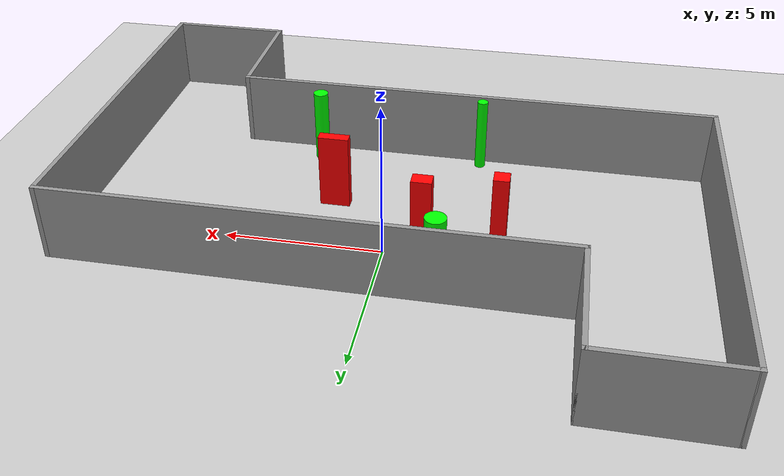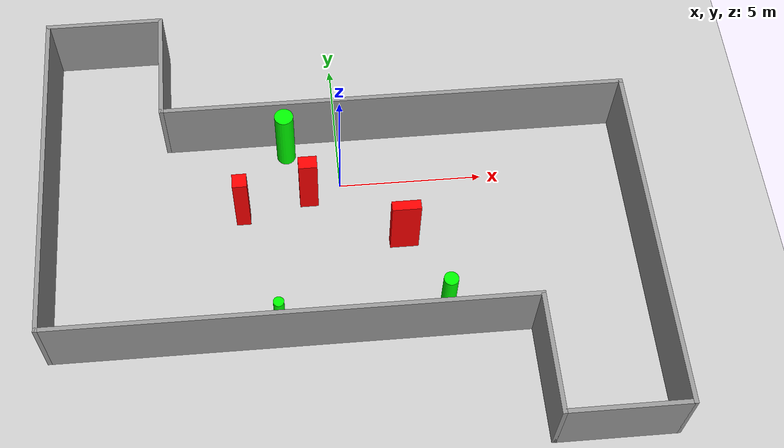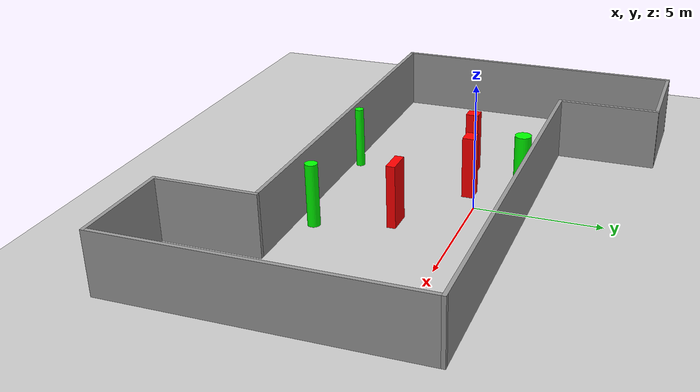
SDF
<sdf version="1.7">
 <world name="default">
  <light name="sun" type="directional">
   <pose>0 0 10 0 -0 0</pose>
   <diffuse>0.8 0.8 0.8 1</diffuse>
   <specular>0.2 0.2 0.2 1</specular>
   <attenuation>
    <range>1000</range>
    <constant>0.9</constant>
    <linear>0.01</linear>
    <quadratic>0.001</quadratic>
   </attenuation>
   <direction>-0.5 0.1 -0.9</direction>
   <spot><inner_angle>0</inner_angle><outer_angle>0</outer_angle><falloff>0</falloff></spot>
  </light>
  <model name="ground_plane">
   <static>1</static>
   <link name="link">
    <collision name="collision">
     <geometry><plane><normal>0 0 1</normal><size>100 100</size></plane></geometry>
     <surface>
      <contact><collide_bitmask>65535</collide_bitmask></contact>
      <friction><ode><mu>100</mu><mu2>50</mu2></ode></friction>
     </surface>
    </collision>
    <visual name="visual">
     <cast_shadows>0</cast_shadows>
     <geometry><plane><normal>0 0 1</normal><size>100 100</size></plane></geometry>
     <material>
      <script><uri>file://media/materials/scripts/gazebo.material</uri><name>Gazebo/Grey</name></script>
     </material>
    </visual>
   </link>
  </model>
  <gravity>0 0 -9.8</gravity>
  <magnetic_field>6e-06 2.3e-05 -4.2e-05</magnetic_field>
  <atmosphere type="adiabatic"/>
  <physics type="ode">
   <max_step_size>0.001</max_step_size>
   <real_time_factor>1</real_time_factor>
   <real_time_update_rate>1000</real_time_update_rate>
  </physics>
  <scene><ambient>0.4 0.4 0.4 1</ambient><background>0.7 0.7 0.7 1</background><shadows>1</shadows></scene>
  <spherical_coordinates>
   <surface_model>EARTH_WGS84</surface_model>
   <latitude_deg>0</latitude_deg>
   <longitude_deg>0</longitude_deg>
   <elevation>0</elevation>
   <heading_deg>0</heading_deg>
  </spherical_coordinates>
  <model name="my_base_walls">
   <link name="Wall_13">
    <collision name="Wall_13_Collision">
     <geometry><box><size>12.15 0.15 2.5</size></box></geometry>
     <pose>0 0 1.25 0 -0 0</pose>
    </collision>
    <visual name="Wall_13_Visual">
     <pose>0 0 1.25 0 -0 0</pose>
     <geometry><box><size>12.15 0.15 2.5</size></box></geometry>
     <material>
      <script><uri>file://media/materials/scripts/gazebo.material</uri><name>Gazebo/Grey</name></script>
      <ambient>1 1 1 1</ambient>
     </material>
     <meta><layer>0</layer></meta>
    </visual>
    <pose>10 -2 0 0 -0 1.5708</pose>
   </link>
   <link name="Wall_15">
    <collision name="Wall_15_Collision">
     <geometry><box><size>16.15 0.15 2.5</size></box></geometry>
     <pose>0 0 1.25 0 -0 0</pose>
    </collision>
    <visual name="Wall_15_Visual">
     <pose>0 0 1.25 0 -0 0</pose>
     <geometry><box><size>16.15 0.15 2.5</size></box></geometry>
     <material>
      <script><uri>file://media/materials/scripts/gazebo.material</uri><name>Gazebo/Grey</name></script>
      <ambient>1 1 1 1</ambient>
     </material>
     <meta><layer>0</layer></meta>
    </visual>
    <pose>2 4 0 0 -0 3.14159</pose>
   </link>
   <link name="Wall_17">
    <collision name="Wall_17_Collision">
     <geometry><box><size>4.15 0.15 2.5</size></box></geometry>
     <pose>0 0 1.25 0 -0 0</pose>
    </collision>
    <visual name="Wall_17_Visual">
     <pose>0 0 1.25 0 -0 0</pose>
     <geometry><box><size>4.15 0.15 2.5</size></box></geometry>
     <material>
      <script><uri>file://media/materials/scripts/gazebo.material</uri><name>Gazebo/Grey</name></script>
      <ambient>1 1 1 1</ambient>
     </material>
     <meta><layer>0</layer></meta>
    </visual>
    <pose>6 -6 0 0 -0 -1.5708</pose>
   </link>
   <link name="Wall_19">
    <collision name="Wall_19_Collision">
     <geometry><box><size>12.15 0.15 2.5</size></box></geometry>
     <pose>0 0 1.25 0 -0 0</pose>
    </collision>
    <visual name="Wall_19_Visual">
     <pose>0 0 1.25 0 -0 0</pose>
     <geometry><box><size>12.15 0.15 2.5</size></box></geometry>
     <material>
      <script><uri>file://media/materials/scripts/gazebo.material</uri><name>Gazebo/Grey</name></script>
      <ambient>1 1 1 1</ambient>
     </material>
     <meta><layer>0</layer></meta>
    </visual>
    <pose>-10 2 0 0 -0 1.5708</pose>
   </link>
   <link name="Wall_21">
    <collision name="Wall_21_Collision">
     <geometry><box><size>4.15 0.15 2.5</size></box></geometry>
     <pose>0 0 1.25 0 -0 0</pose>
    </collision>
    <visual name="Wall_21_Visual">
     <pose>0 0 1.25 0 -0 0</pose>
     <geometry><box><size>4.15 0.15 2.5</size></box></geometry>
     <material>
      <script><uri>file://media/materials/scripts/gazebo.material</uri><name>Gazebo/Grey</name></script>
      <ambient>1 1 1 1</ambient>
     </material>
     <meta><layer>0</layer></meta>
    </visual>
    <pose>-8 8 0 0 -0 0</pose>
   </link>
   <link name="Wall_23">
    <collision name="Wall_23_Collision">
     <geometry><box><size>4.15 0.15 2.5</size></box></geometry>
     <pose>0 0 1.25 0 -0 0</pose>
    </collision>
    <visual name="Wall_23_Visual">
     <pose>0 0 1.25 0 -0 0</pose>
     <geometry><box><size>4.15 0.15 2.5</size></box></geometry>
     <material>
      <script><uri>file://media/materials/scripts/gazebo.material</uri><name>Gazebo/Grey</name></script>
      <ambient>1 1 1 1</ambient>
     </material>
     <meta><layer>0</layer></meta>
    </visual>
    <pose>-6 6 0 0 -0 -1.5708</pose>
   </link>
   <link name="Wall_25">
    <collision name="Wall_25_Collision">
     <geometry><box><size>4.15 0.15 2.5</size></box></geometry>
     <pose>0 0 1.25 0 -0 0</pose>
    </collision>
    <visual name="Wall_25_Visual">
     <pose>0 0 1.25 0 -0 0</pose>
     <geometry><box><size>4.15 0.15 2.5</size></box></geometry>
     <material>
      <script><uri>file://media/materials/scripts/gazebo.material</uri><name>Gazebo/Grey</name></script>
      <ambient>1 1 1 1</ambient>
     </material>
     <meta><layer>0</layer></meta>
    </visual>
    <pose>8 -8 0 0 -0 0</pose>
   </link>
   <link name="Wall_9">
    <collision name="Wall_9_Collision">
     <geometry><box><size>16.15 0.15 2.5</size></box></geometry>
     <pose>0 0 1.25 0 -0 0</pose>
    </collision>
    <visual name="Wall_9_Visual">
     <pose>0 0 1.25 0 -0 0</pose>
     <geometry><box><size>16.15 0.15 2.5</size></box></geometry>
     <material>
      <script><uri>file://media/materials/scripts/gazebo.material</uri><name>Gazebo/Grey</name></script>
      <ambient>1 1 1 1</ambient>
     </material>
     <meta><layer>0</layer></meta>
    </visual>
    <pose>-2 -4 0 0 -0 3.14159</pose>
   </link>
   <static>1</static>
   <pose>-0 -2 0 0 -0 0</pose>
  </model>
  <model name="cylinder1">
   <static>1</static>
   <link name="link">
    <inertial>
     <mass>1</mass>
     <inertia><ixx>0.5</ixx><ixy>0</ixy><ixz>0</ixz><iyy>0.5</iyy><iyz>0</iyz><izz>1</izz></inertia>
    </inertial>
    <collision name="collision">
     <geometry><cylinder><radius>0.32569418682180445</radius><length>2.5</length></cylinder></geometry>
    </collision>
    <visual name="visual">
     <geometry><cylinder><radius>0.32569418682180445</radius><length>2.5</length></cylinder></geometry>
     <material>
      <ambient>0 1 0 1</ambient>
      <diffuse>0 1 0 1</diffuse>
      <specular>0.1 0.1 0.1 1</specular>
      <emissive>0 0 0 0</emissive>
     </material>
    </visual>
   </link>
   <pose>-1.8095575140095423 1.4144869193395122 1.25 0 0 0</pose>
  </model>
  <model name="cylinder2">
   <static>1</static>
   <link name="link">
    <inertial>
     <mass>1</mass>
     <inertia><ixx>0.5</ixx><ixy>0</ixy><ixz>0</ixz><iyy>0.5</iyy><iyz>0</iyz><izz>1</izz></inertia>
    </inertial>
    <collision name="collision">
     <geometry><cylinder><radius>0.24408781611360503</radius><length>2.5</length></cylinder></geometry>
    </collision>
    <visual name="visual">
     <geometry><cylinder><radius>0.24408781611360503</radius><length>2.5</length></cylinder></geometry>
     <material>
      <ambient>0 1 0 1</ambient>
      <diffuse>0 1 0 1</diffuse>
      <specular>0.1 0.1 0.1 1</specular>
      <emissive>0 0 0 0</emissive>
     </material>
    </visual>
   </link>
   <pose>3.1573066169430284 -5.260766494515687 1.25 0 0 0</pose>
  </model>
  <model name="cylinder3">
   <static>1</static>
   <link name="link">
    <inertial>
     <mass>1</mass>
     <inertia><ixx>0.5</ixx><ixy>0</ixy><ixz>0</ixz><iyy>0.5</iyy><iyz>0</iyz><izz>1</izz></inertia>
    </inertial>
    <collision name="collision">
     <geometry><cylinder><radius>0.17659076974507976</radius><length>2.5</length></cylinder></geometry>
    </collision>
    <visual name="visual">
     <geometry><cylinder><radius>0.17659076974507976</radius><length>2.5</length></cylinder></geometry>
     <material>
      <ambient>0 1 0 1</ambient>
      <diffuse>0 1 0 1</diffuse>
      <specular>0.1 0.1 0.1 1</specular>
      <emissive>0 0 0 0</emissive>
     </material>
    </visual>
   </link>
   <pose>-2.3767811460255244 -5.63128622983179 1.25 0 0 0</pose>
  </model>
  <model name="box1">
   <static>1</static>
   <link name="link">
    <inertial>
     <mass>1</mass>
     <inertia><ixx>0.083</ixx><ixy>0</ixy><ixz>0</ixz><iyy>0.083</iyy><iyz>0</iyz><izz>0.083</izz></inertia>
    </inertial>
    <collision name="collision">
     <geometry><box><size>0.49221619521996013 0.509737157243832 2.5</size></box></geometry>
    </collision>
    <visual name="visual">
     <geometry><box><size>0.49221619521996013 0.509737157243832 2.5</size></box></geometry>
     <material>
      <ambient>1 0 0 1</ambient>
      <diffuse>1 0 0 1</diffuse>
      <specular>0.1 0.1 0.1 1</specular>
      <emissive>0 0 0 0</emissive>
     </material>
    </visual>
    <sensor name="my_contact" type="contact">
     <contact><collision>box_collision</collision><topic>__default_topic__</topic></contact>
    </sensor>
   </link>
   <pose>-3.4404651477046344 -1.0420889297996645 1.25 0 0 0</pose>
  </model>
  <model name="box2">
   <static>1</static>
   <link name="link">
    <inertial>
     <mass>1</mass>
     <inertia><ixx>0.083</ixx><ixy>0</ixy><ixz>0</ixz><iyy>0.083</iyy><iyz>0</iyz><izz>0.083</izz></inertia>
    </inertial>
    <collision name="collision">
     <geometry><box><size>0.9770154937226307 0.34308747177422083 2.5</size></box></geometry>
    </collision>
    <visual name="visual">
     <geometry><box><size>0.9770154937226307 0.34308747177422083 2.5</size></box></geometry>
     <material>
      <ambient>1 0 0 1</ambient>
      <diffuse>1 0 0 1</diffuse>
      <specular>0.1 0.1 0.1 1</specular>
      <emissive>0 0 0 0</emissive>
     </material>
    </visual>
    <sensor name="my_contact" type="contact">
     <contact><collision>box_collision</collision><topic>__default_topic__</topic></contact>
    </sensor>
   </link>
   <pose>2.02599271244339 -2.443147044848291 1.25 0 0 0</pose>
  </model>
  <model name="box3">
   <static>1</static>
   <link name="link">
    <inertial>
     <mass>1</mass>
     <inertia><ixx>0.083</ixx><ixy>0</ixy><ixz>0</ixz><iyy>0.083</iyy><iyz>0</iyz><izz>0.083</izz></inertia>
    </inertial>
    <collision name="collision">
     <geometry><box><size>0.636970176569502 0.46553411694715985 2.5</size></box></geometry>
    </collision>
    <visual name="visual">
     <geometry><box><size>0.636970176569502 0.46553411694715985 2.5</size></box></geometry>
     <material>
      <ambient>1 0 0 1</ambient>
      <diffuse>1 0 0 1</diffuse>
      <specular>0.1 0.1 0.1 1</specular>
      <emissive>0 0 0 0</emissive>
     </material>
    </visual>
    <sensor name="my_contact" type="contact">
     <contact><collision>box_collision</collision><topic>__default_topic__</topic></contact>
    </sensor>
   </link>
   <pose>-1.1227415944721422 -0.5025897347776258 1.25 0 0 0</pose>
  </model>
 </world>
</sdf>
